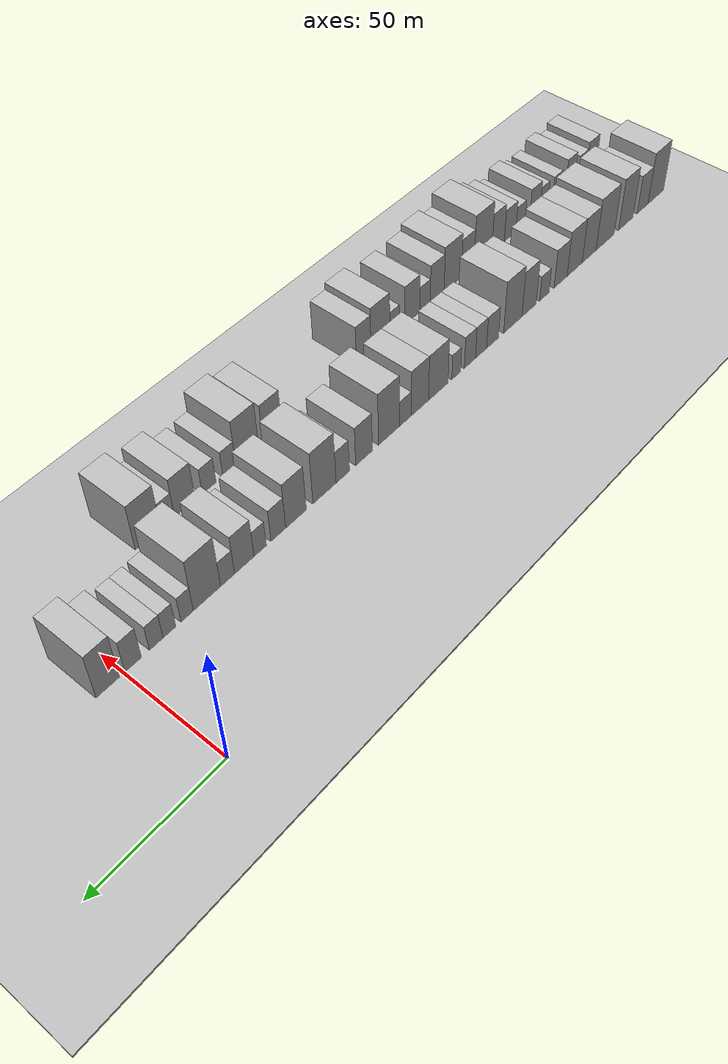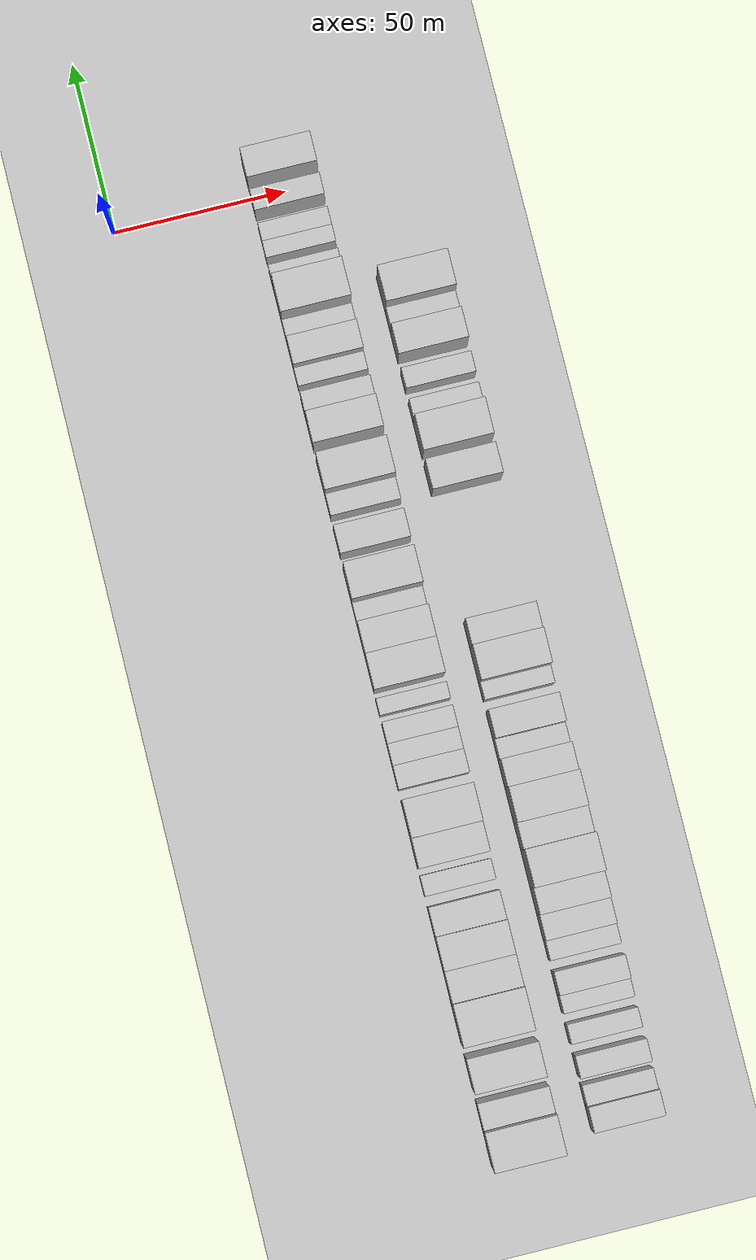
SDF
<sdf version="1.6">
 <world name="default">
  <include><name>ground_plane_1</name><uri>model://HANNAS_ground_plane</uri></include>
  <include>
   <name>ground_plane_2</name>
   <uri>model://HANNAS_ground_plane</uri>
   <pose>100 0 0  0 0 0</pose>
  </include>
  <model name="building_1">
   <static>1</static>
   <pose>50.0000 -272.4580 0 0.000000 0.000000 0.000000</pose>
   <link name="link">
    <pose>0 0 12.00 0 0 0</pose>
    <collision name="collision"><geometry><box><size>20.0000 11.0839 24.0000</size></box></geometry></collision>
    <visual name="visual">
     <cast_shadows>0</cast_shadows>
     <geometry><box><size>20.0000 11.0839 24.0000</size></box></geometry>
     <material>
      <script>
       <uri>model://HANNAS_wall/materials/scripts</uri>
       <uri>model://HANNAS_wall/materials/textures</uri>
       <name>vrc/HANNAS_wall</name>
      </script>
     </material>
    </visual>
   </link>
  </model>
  <model name="building_2">
   <static>1</static>
   <pose>50.0000 -263.2071 0 0.000000 0.000000 0.000000</pose>
   <link name="link">
    <pose>0 0 9.00 0 0 0</pose>
    <collision name="collision"><geometry><box><size>20.0000 7.4179 18.0000</size></box></geometry></collision>
    <visual name="visual">
     <cast_shadows>0</cast_shadows>
     <geometry><box><size>20.0000 7.4179 18.0000</size></box></geometry>
     <material>
      <script>
       <uri>model://HANNAS_wall/materials/scripts</uri>
       <uri>model://HANNAS_wall/materials/textures</uri>
       <name>vrc/HANNAS_wall</name>
      </script>
     </material>
    </visual>
   </link>
  </model>
  <model name="building_3">
   <static>1</static>
   <pose>50.0000 -251.6406 0 0.000000 0.000000 0.000000</pose>
   <link name="link">
    <pose>0 0 12.00 0 0 0</pose>
    <collision name="collision"><geometry><box><size>20.0000 9.7152 24.0000</size></box></geometry></collision>
    <visual name="visual">
     <cast_shadows>0</cast_shadows>
     <geometry><box><size>20.0000 9.7152 24.0000</size></box></geometry>
     <material>
      <script>
       <uri>model://HANNAS_wall/materials/scripts</uri>
       <uri>model://HANNAS_wall/materials/textures</uri>
       <name>vrc/HANNAS_wall</name>
      </script>
     </material>
    </visual>
   </link>
  </model>
  <model name="building_4">
   <static>1</static>
   <pose>50.0000 -237.8133 0 0.000000 0.000000 0.000000</pose>
   <link name="link">
    <pose>0 0 12.00 0 0 0</pose>
    <collision name="collision"><geometry><box><size>20.0000 11.9394 24.0000</size></box></geometry></collision>
    <visual name="visual">
     <cast_shadows>0</cast_shadows>
     <geometry><box><size>20.0000 11.9394 24.0000</size></box></geometry>
     <material>
      <script>
       <uri>model://HANNAS_wall/materials/scripts</uri>
       <uri>model://HANNAS_wall/materials/textures</uri>
       <name>vrc/HANNAS_wall</name>
      </script>
     </material>
    </visual>
   </link>
  </model>
  <model name="building_5">
   <static>1</static>
   <pose>50.0000 -227.3742 0 0.000000 0.000000 0.000000</pose>
   <link name="link">
    <pose>0 0 10.50 0 0 0</pose>
    <collision name="collision"><geometry><box><size>20.0000 8.9388 21.0000</size></box></geometry></collision>
    <visual name="visual">
     <cast_shadows>0</cast_shadows>
     <geometry><box><size>20.0000 8.9388 21.0000</size></box></geometry>
     <material>
      <script>
       <uri>model://HANNAS_wall/materials/scripts</uri>
       <uri>model://HANNAS_wall/materials/textures</uri>
       <name>vrc/HANNAS_wall</name>
      </script>
     </material>
    </visual>
   </link>
  </model>
  <model name="building_6">
   <static>1</static>
   <pose>50.0000 -218.1332 0 0.000000 0.000000 0.000000</pose>
   <link name="link">
    <pose>0 0 10.50 0 0 0</pose>
    <collision name="collision"><geometry><box><size>20.0000 9.5433 21.0000</size></box></geometry></collision>
    <visual name="visual">
     <cast_shadows>0</cast_shadows>
     <geometry><box><size>20.0000 9.5433 21.0000</size></box></geometry>
     <material>
      <script>
       <uri>model://HANNAS_wall/materials/scripts</uri>
       <uri>model://HANNAS_wall/materials/textures</uri>
       <name>vrc/HANNAS_wall</name>
      </script>
     </material>
    </visual>
   </link>
  </model>
  <model name="building_7">
   <static>1</static>
   <pose>50.0000 -209.2795 0 0.000000 0.000000 0.000000</pose>
   <link name="link">
    <pose>0 0 9.00 0 0 0</pose>
    <collision name="collision"><geometry><box><size>20.0000 8.1641 18.0000</size></box></geometry></collision>
    <visual name="visual">
     <cast_shadows>0</cast_shadows>
     <geometry><box><size>20.0000 8.1641 18.0000</size></box></geometry>
     <material>
      <script>
       <uri>model://HANNAS_wall/materials/scripts</uri>
       <uri>model://HANNAS_wall/materials/textures</uri>
       <name>vrc/HANNAS_wall</name>
      </script>
     </material>
    </visual>
   </link>
  </model>
  <model name="building_8">
   <static>1</static>
   <pose>50.0000 -199.2894 0 0.000000 0.000000 0.000000</pose>
   <link name="link">
    <pose>0 0 6.00 0 0 0</pose>
    <collision name="collision"><geometry><box><size>20.0000 5.8160 12.0000</size></box></geometry></collision>
    <visual name="visual">
     <cast_shadows>0</cast_shadows>
     <geometry><box><size>20.0000 5.8160 12.0000</size></box></geometry>
     <material>
      <script>
       <uri>model://HANNAS_wall/materials/scripts</uri>
       <uri>model://HANNAS_wall/materials/textures</uri>
       <name>vrc/HANNAS_wall</name>
      </script>
     </material>
    </visual>
   </link>
  </model>
  <model name="building_9">
   <static>1</static>
   <pose>50.0000 -190.1511 0 0.000000 0.000000 0.000000</pose>
   <link name="link">
    <pose>0 0 10.50 0 0 0</pose>
    <collision name="collision"><geometry><box><size>20.0000 8.4607 21.0000</size></box></geometry></collision>
    <visual name="visual">
     <cast_shadows>0</cast_shadows>
     <geometry><box><size>20.0000 8.4607 21.0000</size></box></geometry>
     <material>
      <script>
       <uri>model://HANNAS_wall/materials/scripts</uri>
       <uri>model://HANNAS_wall/materials/textures</uri>
       <name>vrc/HANNAS_wall</name>
      </script>
     </material>
    </visual>
   </link>
  </model>
  <model name="building_10">
   <static>1</static>
   <pose>50.0000 -180.5715 0 0.000000 0.000000 0.000000</pose>
   <link name="link">
    <pose>0 0 12.00 0 0 0</pose>
    <collision name="collision"><geometry><box><size>20.0000 10.6986 24.0000</size></box></geometry></collision>
    <visual name="visual">
     <cast_shadows>0</cast_shadows>
     <geometry><box><size>20.0000 10.6986 24.0000</size></box></geometry>
     <material>
      <script>
       <uri>model://HANNAS_wall/materials/scripts</uri>
       <uri>model://HANNAS_wall/materials/textures</uri>
       <name>vrc/HANNAS_wall</name>
      </script>
     </material>
    </visual>
   </link>
  </model>
  <model name="building_11">
   <static>1</static>
   <pose>50.0000 -168.8535 0 0.000000 0.000000 0.000000</pose>
   <link name="link">
    <pose>0 0 7.50 0 0 0</pose>
    <collision name="collision"><geometry><box><size>20.0000 6.7373 15.0000</size></box></geometry></collision>
    <visual name="visual">
     <cast_shadows>0</cast_shadows>
     <geometry><box><size>20.0000 6.7373 15.0000</size></box></geometry>
     <material>
      <script>
       <uri>model://HANNAS_wall/materials/scripts</uri>
       <uri>model://HANNAS_wall/materials/textures</uri>
       <name>vrc/HANNAS_wall</name>
      </script>
     </material>
    </visual>
   </link>
  </model>
  <model name="building_12">
   <static>1</static>
   <pose>50.0000 -162.3870 0 0.000000 0.000000 0.000000</pose>
   <link name="link">
    <pose>0 0 7.50 0 0 0</pose>
    <collision name="collision"><geometry><box><size>20.0000 6.1957 15.0000</size></box></geometry></collision>
    <visual name="visual">
     <cast_shadows>0</cast_shadows>
     <geometry><box><size>20.0000 6.1957 15.0000</size></box></geometry>
     <material>
      <script>
       <uri>model://HANNAS_wall/materials/scripts</uri>
       <uri>model://HANNAS_wall/materials/textures</uri>
       <name>vrc/HANNAS_wall</name>
      </script>
     </material>
    </visual>
   </link>
  </model>
  <model name="building_13">
   <static>1</static>
   <pose>50.0000 -156.2101 0 0.000000 0.000000 0.000000</pose>
   <link name="link">
    <pose>0 0 7.50 0 0 0</pose>
    <collision name="collision"><geometry><box><size>20.0000 6.1582 15.0000</size></box></geometry></collision>
    <visual name="visual">
     <cast_shadows>0</cast_shadows>
     <geometry><box><size>20.0000 6.1582 15.0000</size></box></geometry>
     <material>
      <script>
       <uri>model://HANNAS_wall/materials/scripts</uri>
       <uri>model://HANNAS_wall/materials/textures</uri>
       <name>vrc/HANNAS_wall</name>
      </script>
     </material>
    </visual>
   </link>
  </model>
  <model name="building_14">
   <static>1</static>
   <pose>50.0000 -148.7292 0 0.000000 0.000000 0.000000</pose>
   <link name="link">
    <pose>0 0 6.00 0 0 0</pose>
    <collision name="collision"><geometry><box><size>20.0000 4.8036 12.0000</size></box></geometry></collision>
    <visual name="visual">
     <cast_shadows>0</cast_shadows>
     <geometry><box><size>20.0000 4.8036 12.0000</size></box></geometry>
     <material>
      <script>
       <uri>model://HANNAS_wall/materials/scripts</uri>
       <uri>model://HANNAS_wall/materials/textures</uri>
       <name>vrc/HANNAS_wall</name>
      </script>
     </material>
    </visual>
   </link>
  </model>
  <model name="building_15">
   <static>1</static>
   <pose>50.0000 -139.2050 0 0.000000 0.000000 0.000000</pose>
   <link name="link">
    <pose>0 0 10.50 0 0 0</pose>
    <collision name="collision"><geometry><box><size>20.0000 10.2449 21.0000</size></box></geometry></collision>
    <visual name="visual">
     <cast_shadows>0</cast_shadows>
     <geometry><box><size>20.0000 10.2449 21.0000</size></box></geometry>
     <material>
      <script>
       <uri>model://HANNAS_wall/materials/scripts</uri>
       <uri>model://HANNAS_wall/materials/textures</uri>
       <name>vrc/HANNAS_wall</name>
      </script>
     </material>
    </visual>
   </link>
  </model>
  <model name="building_16">
   <static>1</static>
   <pose>50.0000 -129.5559 0 0.000000 0.000000 0.000000</pose>
   <link name="link">
    <pose>0 0 10.50 0 0 0</pose>
    <collision name="collision"><geometry><box><size>20.0000 9.0533 21.0000</size></box></geometry></collision>
    <visual name="visual">
     <cast_shadows>0</cast_shadows>
     <geometry><box><size>20.0000 9.0533 21.0000</size></box></geometry>
     <material>
      <script>
       <uri>model://HANNAS_wall/materials/scripts</uri>
       <uri>model://HANNAS_wall/materials/textures</uri>
       <name>vrc/HANNAS_wall</name>
      </script>
     </material>
    </visual>
   </link>
  </model>
  <model name="building_17">
   <static>1</static>
   <pose>50.0000 -122.0449 0 0.000000 0.000000 0.000000</pose>
   <link name="link">
    <pose>0 0 6.00 0 0 0</pose>
    <collision name="collision"><geometry><box><size>20.0000 5.9686 12.0000</size></box></geometry></collision>
    <visual name="visual">
     <cast_shadows>0</cast_shadows>
     <geometry><box><size>20.0000 5.9686 12.0000</size></box></geometry>
     <material>
      <script>
       <uri>model://HANNAS_wall/materials/scripts</uri>
       <uri>model://HANNAS_wall/materials/textures</uri>
       <name>vrc/HANNAS_wall</name>
      </script>
     </material>
    </visual>
   </link>
  </model>
  <model name="building_18">
   <static>1</static>
   <pose>50.0000 -113.8500 0 0.000000 0.000000 0.000000</pose>
   <link name="link">
    <pose>0 0 12.00 0 0 0</pose>
    <collision name="collision"><geometry><box><size>20.0000 10.4212 24.0000</size></box></geometry></collision>
    <visual name="visual">
     <cast_shadows>0</cast_shadows>
     <geometry><box><size>20.0000 10.4212 24.0000</size></box></geometry>
     <material>
      <script>
       <uri>model://HANNAS_wall/materials/scripts</uri>
       <uri>model://HANNAS_wall/materials/textures</uri>
       <name>vrc/HANNAS_wall</name>
      </script>
     </material>
    </visual>
   </link>
  </model>
  <model name="building_19">
   <static>1</static>
   <pose>50.0000 -101.5879 0 0.000000 0.000000 0.000000</pose>
   <link name="link">
    <pose>0 0 9.00 0 0 0</pose>
    <collision name="collision"><geometry><box><size>20.0000 8.1029 18.0000</size></box></geometry></collision>
    <visual name="visual">
     <cast_shadows>0</cast_shadows>
     <geometry><box><size>20.0000 8.1029 18.0000</size></box></geometry>
     <material>
      <script>
       <uri>model://HANNAS_wall/materials/scripts</uri>
       <uri>model://HANNAS_wall/materials/textures</uri>
       <name>vrc/HANNAS_wall</name>
      </script>
     </material>
    </visual>
   </link>
  </model>
  <model name="building_20">
   <static>1</static>
   <pose>50.0000 -91.3871 0 0.000000 0.000000 0.000000</pose>
   <link name="link">
    <pose>0 0 7.50 0 0 0</pose>
    <collision name="collision"><geometry><box><size>20.0000 6.2987 15.0000</size></box></geometry></collision>
    <visual name="visual">
     <cast_shadows>0</cast_shadows>
     <geometry><box><size>20.0000 6.2987 15.0000</size></box></geometry>
     <material>
      <script>
       <uri>model://HANNAS_wall/materials/scripts</uri>
       <uri>model://HANNAS_wall/materials/textures</uri>
       <name>vrc/HANNAS_wall</name>
      </script>
     </material>
    </visual>
   </link>
  </model>
  <model name="building_21">
   <static>1</static>
   <pose>50.0000 -82.8770 0 0.000000 0.000000 0.000000</pose>
   <link name="link">
    <pose>0 0 12.00 0 0 0</pose>
    <collision name="collision"><geometry><box><size>20.0000 10.7214 24.0000</size></box></geometry></collision>
    <visual name="visual">
     <cast_shadows>0</cast_shadows>
     <geometry><box><size>20.0000 10.7214 24.0000</size></box></geometry>
     <material>
      <script>
       <uri>model://HANNAS_wall/materials/scripts</uri>
       <uri>model://HANNAS_wall/materials/textures</uri>
       <name>vrc/HANNAS_wall</name>
      </script>
     </material>
    </visual>
   </link>
  </model>
  <model name="building_22">
   <static>1</static>
   <pose>50.0000 -69.9177 0 0.000000 0.000000 0.000000</pose>
   <link name="link">
    <pose>0 0 10.50 0 0 0</pose>
    <collision name="collision"><geometry><box><size>20.0000 9.1972 21.0000</size></box></geometry></collision>
    <visual name="visual">
     <cast_shadows>0</cast_shadows>
     <geometry><box><size>20.0000 9.1972 21.0000</size></box></geometry>
     <material>
      <script>
       <uri>model://HANNAS_wall/materials/scripts</uri>
       <uri>model://HANNAS_wall/materials/textures</uri>
       <name>vrc/HANNAS_wall</name>
      </script>
     </material>
    </visual>
   </link>
  </model>
  <model name="building_23">
   <static>1</static>
   <pose>50.0000 -62.0917 0 0.000000 0.000000 0.000000</pose>
   <link name="link">
    <pose>0 0 7.50 0 0 0</pose>
    <collision name="collision"><geometry><box><size>20.0000 6.4550 15.0000</size></box></geometry></collision>
    <visual name="visual">
     <cast_shadows>0</cast_shadows>
     <geometry><box><size>20.0000 6.4550 15.0000</size></box></geometry>
     <material>
      <script>
       <uri>model://HANNAS_wall/materials/scripts</uri>
       <uri>model://HANNAS_wall/materials/textures</uri>
       <name>vrc/HANNAS_wall</name>
      </script>
     </material>
    </visual>
   </link>
  </model>
  <model name="building_24">
   <static>1</static>
   <pose>50.0000 -54.2108 0 0.000000 0.000000 0.000000</pose>
   <link name="link">
    <pose>0 0 6.00 0 0 0</pose>
    <collision name="collision"><geometry><box><size>20.0000 5.3067 12.0000</size></box></geometry></collision>
    <visual name="visual">
     <cast_shadows>0</cast_shadows>
     <geometry><box><size>20.0000 5.3067 12.0000</size></box></geometry>
     <material>
      <script>
       <uri>model://HANNAS_wall/materials/scripts</uri>
       <uri>model://HANNAS_wall/materials/textures</uri>
       <name>vrc/HANNAS_wall</name>
      </script>
     </material>
    </visual>
   </link>
  </model>
  <model name="building_25">
   <static>1</static>
   <pose>50.0000 -47.4752 0 0.000000 0.000000 0.000000</pose>
   <link name="link">
    <pose>0 0 9.00 0 0 0</pose>
    <collision name="collision"><geometry><box><size>20.0000 8.1644 18.0000</size></box></geometry></collision>
    <visual name="visual">
     <cast_shadows>0</cast_shadows>
     <geometry><box><size>20.0000 8.1644 18.0000</size></box></geometry>
     <material>
      <script>
       <uri>model://HANNAS_wall/materials/scripts</uri>
       <uri>model://HANNAS_wall/materials/textures</uri>
       <name>vrc/HANNAS_wall</name>
      </script>
     </material>
    </visual>
   </link>
  </model>
  <model name="building_26">
   <static>1</static>
   <pose>50.0000 -40.4975 0 0.000000 0.000000 0.000000</pose>
   <link name="link">
    <pose>0 0 6.00 0 0 0</pose>
    <collision name="collision"><geometry><box><size>20.0000 5.7911 12.0000</size></box></geometry></collision>
    <visual name="visual">
     <cast_shadows>0</cast_shadows>
     <geometry><box><size>20.0000 5.7911 12.0000</size></box></geometry>
     <material>
      <script>
       <uri>model://HANNAS_wall/materials/scripts</uri>
       <uri>model://HANNAS_wall/materials/textures</uri>
       <name>vrc/HANNAS_wall</name>
      </script>
     </material>
    </visual>
   </link>
  </model>
  <model name="building_27">
   <static>1</static>
   <pose>50.0000 -32.0658 0 0.000000 0.000000 0.000000</pose>
   <link name="link">
    <pose>0 0 12.00 0 0 0</pose>
    <collision name="collision"><geometry><box><size>20.0000 11.0724 24.0000</size></box></geometry></collision>
    <visual name="visual">
     <cast_shadows>0</cast_shadows>
     <geometry><box><size>20.0000 11.0724 24.0000</size></box></geometry>
     <material>
      <script>
       <uri>model://HANNAS_wall/materials/scripts</uri>
       <uri>model://HANNAS_wall/materials/textures</uri>
       <name>vrc/HANNAS_wall</name>
      </script>
     </material>
    </visual>
   </link>
  </model>
  <model name="building_28">
   <static>1</static>
   <pose>50.0000 -24.0606 0 0.000000 0.000000 0.000000</pose>
   <link name="link">
    <pose>0 0 6.00 0 0 0</pose>
    <collision name="collision"><geometry><box><size>20.0000 4.9379 12.0000</size></box></geometry></collision>
    <visual name="visual">
     <cast_shadows>0</cast_shadows>
     <geometry><box><size>20.0000 4.9379 12.0000</size></box></geometry>
     <material>
      <script>
       <uri>model://HANNAS_wall/materials/scripts</uri>
       <uri>model://HANNAS_wall/materials/textures</uri>
       <name>vrc/HANNAS_wall</name>
      </script>
     </material>
    </visual>
   </link>
  </model>
  <model name="building_29">
   <static>1</static>
   <pose>50.0000 -17.1362 0 0.000000 0.000000 0.000000</pose>
   <link name="link">
    <pose>0 0 6.00 0 0 0</pose>
    <collision name="collision"><geometry><box><size>20.0000 4.9109 12.0000</size></box></geometry></collision>
    <visual name="visual">
     <cast_shadows>0</cast_shadows>
     <geometry><box><size>20.0000 4.9109 12.0000</size></box></geometry>
     <material>
      <script>
       <uri>model://HANNAS_wall/materials/scripts</uri>
       <uri>model://HANNAS_wall/materials/textures</uri>
       <name>vrc/HANNAS_wall</name>
      </script>
     </material>
    </visual>
   </link>
  </model>
  <model name="building_30">
   <static>1</static>
   <pose>50.0000 -12.0396 0 0.000000 0.000000 0.000000</pose>
   <link name="link">
    <pose>0 0 6.00 0 0 0</pose>
    <collision name="collision"><geometry><box><size>20.0000 5.2822 12.0000</size></box></geometry></collision>
    <visual name="visual">
     <cast_shadows>0</cast_shadows>
     <geometry><box><size>20.0000 5.2822 12.0000</size></box></geometry>
     <material>
      <script>
       <uri>model://HANNAS_wall/materials/scripts</uri>
       <uri>model://HANNAS_wall/materials/textures</uri>
       <name>vrc/HANNAS_wall</name>
      </script>
     </material>
    </visual>
   </link>
  </model>
  <model name="building_31">
   <static>1</static>
   <pose>50.0000 -3.2938 0 0.000000 0.000000 0.000000</pose>
   <link name="link">
    <pose>0 0 7.50 0 0 0</pose>
    <collision name="collision"><geometry><box><size>20.0000 6.2094 15.0000</size></box></geometry></collision>
    <visual name="visual">
     <cast_shadows>0</cast_shadows>
     <geometry><box><size>20.0000 6.2094 15.0000</size></box></geometry>
     <material>
      <script>
       <uri>model://HANNAS_wall/materials/scripts</uri>
       <uri>model://HANNAS_wall/materials/textures</uri>
       <name>vrc/HANNAS_wall</name>
      </script>
     </material>
    </visual>
   </link>
  </model>
  <model name="building_32">
   <static>1</static>
   <pose>50.0000 6.1008 0 0.000000 0.000000 0.000000</pose>
   <link name="link">
    <pose>0 0 10.50 0 0 0</pose>
    <collision name="collision"><geometry><box><size>20.0000 8.5798 21.0000</size></box></geometry></collision>
    <visual name="visual">
     <cast_shadows>0</cast_shadows>
     <geometry><box><size>20.0000 8.5798 21.0000</size></box></geometry>
     <material>
      <script>
       <uri>model://HANNAS_wall/materials/scripts</uri>
       <uri>model://HANNAS_wall/materials/textures</uri>
       <name>vrc/HANNAS_wall</name>
      </script>
     </material>
    </visual>
   </link>
  </model>
  <model name="building_63">
   <static>1</static>
   <pose>79.0000 -271.4325 0 0.000000 0.000000 0.000000</pose>
   <link name="link">
    <pose>0 0 7.50 0 0 0</pose>
    <collision name="collision"><geometry><box><size>20.0000 7.1350 15.0000</size></box></geometry></collision>
    <visual name="visual">
     <cast_shadows>0</cast_shadows>
     <geometry><box><size>20.0000 7.1350 15.0000</size></box></geometry>
     <material>
      <script>
       <uri>model://HANNAS_wall/materials/scripts</uri>
       <uri>model://HANNAS_wall/materials/textures</uri>
       <name>vrc/HANNAS_wall</name>
      </script>
     </material>
    </visual>
   </link>
  </model>
  <model name="building_64">
   <static>1</static>
   <pose>79.0000 -264.9563 0 0.000000 0.000000 0.000000</pose>
   <link name="link">
    <pose>0 0 6.00 0 0 0</pose>
    <collision name="collision"><geometry><box><size>20.0000 5.8173 12.0000</size></box></geometry></collision>
    <visual name="visual">
     <cast_shadows>0</cast_shadows>
     <geometry><box><size>20.0000 5.8173 12.0000</size></box></geometry>
     <material>
      <script>
       <uri>model://HANNAS_wall/materials/scripts</uri>
       <uri>model://HANNAS_wall/materials/textures</uri>
       <name>vrc/HANNAS_wall</name>
      </script>
     </material>
    </visual>
   </link>
  </model>
  <model name="building_65">
   <static>1</static>
   <pose>79.0000 -256.8660 0 0.000000 0.000000 0.000000</pose>
   <link name="link">
    <pose>0 0 7.50 0 0 0</pose>
    <collision name="collision"><geometry><box><size>20.0000 6.3634 15.0000</size></box></geometry></collision>
    <visual name="visual">
     <cast_shadows>0</cast_shadows>
     <geometry><box><size>20.0000 6.3634 15.0000</size></box></geometry>
     <material>
      <script>
       <uri>model://HANNAS_wall/materials/scripts</uri>
       <uri>model://HANNAS_wall/materials/textures</uri>
       <name>vrc/HANNAS_wall</name>
      </script>
     </material>
    </visual>
   </link>
  </model>
  <model name="building_66">
   <static>1</static>
   <pose>79.0000 -247.9152 0 0.000000 0.000000 0.000000</pose>
   <link name="link">
    <pose>0 0 6.00 0 0 0</pose>
    <collision name="collision"><geometry><box><size>20.0000 5.5382 12.0000</size></box></geometry></collision>
    <visual name="visual">
     <cast_shadows>0</cast_shadows>
     <geometry><box><size>20.0000 5.5382 12.0000</size></box></geometry>
     <material>
      <script>
       <uri>model://HANNAS_wall/materials/scripts</uri>
       <uri>model://HANNAS_wall/materials/textures</uri>
       <name>vrc/HANNAS_wall</name>
      </script>
     </material>
    </visual>
   </link>
  </model>
  <model name="building_67">
   <static>1</static>
   <pose>79.0000 -239.5707 0 0.000000 0.000000 0.000000</pose>
   <link name="link">
    <pose>0 0 6.00 0 0 0</pose>
    <collision name="collision"><geometry><box><size>20.0000 5.1507 12.0000</size></box></geometry></collision>
    <visual name="visual">
     <cast_shadows>0</cast_shadows>
     <geometry><box><size>20.0000 5.1507 12.0000</size></box></geometry>
     <material>
      <script>
       <uri>model://HANNAS_wall/materials/scripts</uri>
       <uri>model://HANNAS_wall/materials/textures</uri>
       <name>vrc/HANNAS_wall</name>
      </script>
     </material>
    </visual>
   </link>
  </model>
  <model name="building_68">
   <static>1</static>
   <pose>79.0000 -233.6672 0 0.000000 0.000000 0.000000</pose>
   <link name="link">
    <pose>0 0 7.50 0 0 0</pose>
    <collision name="collision"><geometry><box><size>20.0000 6.6565 15.0000</size></box></geometry></collision>
    <visual name="visual">
     <cast_shadows>0</cast_shadows>
     <geometry><box><size>20.0000 6.6565 15.0000</size></box></geometry>
     <material>
      <script>
       <uri>model://HANNAS_wall/materials/scripts</uri>
       <uri>model://HANNAS_wall/materials/textures</uri>
       <name>vrc/HANNAS_wall</name>
      </script>
     </material>
    </visual>
   </link>
  </model>
  <model name="building_69">
   <static>1</static>
   <pose>79.0000 -224.5181 0 0.000000 0.000000 0.000000</pose>
   <link name="link">
    <pose>0 0 6.00 0 0 0</pose>
    <collision name="collision"><geometry><box><size>20.0000 5.6416 12.0000</size></box></geometry></collision>
    <visual name="visual">
     <cast_shadows>0</cast_shadows>
     <geometry><box><size>20.0000 5.6416 12.0000</size></box></geometry>
     <material>
      <script>
       <uri>model://HANNAS_wall/materials/scripts</uri>
       <uri>model://HANNAS_wall/materials/textures</uri>
       <name>vrc/HANNAS_wall</name>
      </script>
     </material>
    </visual>
   </link>
  </model>
  <model name="building_70">
   <static>1</static>
   <pose>79.0000 -218.0711 0 0.000000 0.000000 0.000000</pose>
   <link name="link">
    <pose>0 0 7.50 0 0 0</pose>
    <collision name="collision"><geometry><box><size>20.0000 7.2524 15.0000</size></box></geometry></collision>
    <visual name="visual">
     <cast_shadows>0</cast_shadows>
     <geometry><box><size>20.0000 7.2524 15.0000</size></box></geometry>
     <material>
      <script>
       <uri>model://HANNAS_wall/materials/scripts</uri>
       <uri>model://HANNAS_wall/materials/textures</uri>
       <name>vrc/HANNAS_wall</name>
      </script>
     </material>
    </visual>
   </link>
  </model>
  <model name="building_71">
   <static>1</static>
   <pose>79.0000 -210.6546 0 0.000000 0.000000 0.000000</pose>
   <link name="link">
    <pose>0 0 9.00 0 0 0</pose>
    <collision name="collision"><geometry><box><size>20.0000 7.5807 18.0000</size></box></geometry></collision>
    <visual name="visual">
     <cast_shadows>0</cast_shadows>
     <geometry><box><size>20.0000 7.5807 18.0000</size></box></geometry>
     <material>
      <script>
       <uri>model://HANNAS_wall/materials/scripts</uri>
       <uri>model://HANNAS_wall/materials/textures</uri>
       <name>vrc/HANNAS_wall</name>
      </script>
     </material>
    </visual>
   </link>
  </model>
  <model name="building_72">
   <static>1</static>
   <pose>79.0000 -201.5052 0 0.000000 0.000000 0.000000</pose>
   <link name="link">
    <pose>0 0 12.00 0 0 0</pose>
    <collision name="collision"><geometry><box><size>20.0000 10.7180 24.0000</size></box></geometry></collision>
    <visual name="visual">
     <cast_shadows>0</cast_shadows>
     <geometry><box><size>20.0000 10.7180 24.0000</size></box></geometry>
     <material>
      <script>
       <uri>model://HANNAS_wall/materials/scripts</uri>
       <uri>model://HANNAS_wall/materials/textures</uri>
       <name>vrc/HANNAS_wall</name>
      </script>
     </material>
    </visual>
   </link>
  </model>
  <model name="building_73">
   <static>1</static>
   <pose>79.0000 -192.4243 0 0.000000 0.000000 0.000000</pose>
   <link name="link">
    <pose>0 0 9.00 0 0 0</pose>
    <collision name="collision"><geometry><box><size>20.0000 7.4438 18.0000</size></box></geometry></collision>
    <visual name="visual">
     <cast_shadows>0</cast_shadows>
     <geometry><box><size>20.0000 7.4438 18.0000</size></box></geometry>
     <material>
      <script>
       <uri>model://HANNAS_wall/materials/scripts</uri>
       <uri>model://HANNAS_wall/materials/textures</uri>
       <name>vrc/HANNAS_wall</name>
      </script>
     </material>
    </visual>
   </link>
  </model>
  <model name="building_74">
   <static>1</static>
   <pose>79.0000 -183.7045 0 0.000000 0.000000 0.000000</pose>
   <link name="link">
    <pose>0 0 10.50 0 0 0</pose>
    <collision name="collision"><geometry><box><size>20.0000 9.9958 21.0000</size></box></geometry></collision>
    <visual name="visual">
     <cast_shadows>0</cast_shadows>
     <geometry><box><size>20.0000 9.9958 21.0000</size></box></geometry>
     <material>
      <script>
       <uri>model://HANNAS_wall/materials/scripts</uri>
       <uri>model://HANNAS_wall/materials/textures</uri>
       <name>vrc/HANNAS_wall</name>
      </script>
     </material>
    </visual>
   </link>
  </model>
  <model name="building_75">
   <static>1</static>
   <pose>79.0000 -174.7690 0 0.000000 0.000000 0.000000</pose>
   <link name="link">
    <pose>0 0 9.00 0 0 0</pose>
    <collision name="collision"><geometry><box><size>20.0000 7.8751 18.0000</size></box></geometry></collision>
    <visual name="visual">
     <cast_shadows>0</cast_shadows>
     <geometry><box><size>20.0000 7.8751 18.0000</size></box></geometry>
     <material>
      <script>
       <uri>model://HANNAS_wall/materials/scripts</uri>
       <uri>model://HANNAS_wall/materials/textures</uri>
       <name>vrc/HANNAS_wall</name>
      </script>
     </material>
    </visual>
   </link>
  </model>
  <model name="building_76">
   <static>1</static>
   <pose>79.0000 -167.9381 0 0.000000 0.000000 0.000000</pose>
   <link name="link">
    <pose>0 0 6.00 0 0 0</pose>
    <collision name="collision"><geometry><box><size>20.0000 5.7867 12.0000</size></box></geometry></collision>
    <visual name="visual">
     <cast_shadows>0</cast_shadows>
     <geometry><box><size>20.0000 5.7867 12.0000</size></box></geometry>
     <material>
      <script>
       <uri>model://HANNAS_wall/materials/scripts</uri>
       <uri>model://HANNAS_wall/materials/textures</uri>
       <name>vrc/HANNAS_wall</name>
      </script>
     </material>
    </visual>
   </link>
  </model>
  <model name="building_77">
   <static>1</static>
   <pose>79.0000 -160.9713 0 0.000000 0.000000 0.000000</pose>
   <link name="link">
    <pose>0 0 9.00 0 0 0</pose>
    <collision name="collision"><geometry><box><size>20.0000 8.1470 18.0000</size></box></geometry></collision>
    <visual name="visual">
     <cast_shadows>0</cast_shadows>
     <geometry><box><size>20.0000 8.1470 18.0000</size></box></geometry>
     <material>
      <script>
       <uri>model://HANNAS_wall/materials/scripts</uri>
       <uri>model://HANNAS_wall/materials/textures</uri>
       <name>vrc/HANNAS_wall</name>
      </script>
     </material>
    </visual>
   </link>
  </model>
  <model name="building_78">
   <static>1</static>
   <pose>79.0000 -151.3480 0 0.000000 0.000000 0.000000</pose>
   <link name="link">
    <pose>0 0 6.00 0 0 0</pose>
    <collision name="collision"><geometry><box><size>20.0000 5.0995 12.0000</size></box></geometry></collision>
    <visual name="visual">
     <cast_shadows>0</cast_shadows>
     <geometry><box><size>20.0000 5.0995 12.0000</size></box></geometry>
     <material>
      <script>
       <uri>model://HANNAS_wall/materials/scripts</uri>
       <uri>model://HANNAS_wall/materials/textures</uri>
       <name>vrc/HANNAS_wall</name>
      </script>
     </material>
    </visual>
   </link>
  </model>
  <model name="building_79">
   <static>1</static>
   <pose>79.0000 -143.7996 0 0.000000 0.000000 0.000000</pose>
   <link name="link">
    <pose>0 0 10.50 0 0 0</pose>
    <collision name="collision"><geometry><box><size>20.0000 9.9974 21.0000</size></box></geometry></collision>
    <visual name="visual">
     <cast_shadows>0</cast_shadows>
     <geometry><box><size>20.0000 9.9974 21.0000</size></box></geometry>
     <material>
      <script>
       <uri>model://HANNAS_wall/materials/scripts</uri>
       <uri>model://HANNAS_wall/materials/textures</uri>
       <name>vrc/HANNAS_wall</name>
      </script>
     </material>
    </visual>
   </link>
  </model>
  <model name="building_80">
   <static>1</static>
   <pose>79.0000 -135.0164 0 0.000000 0.000000 0.000000</pose>
   <link name="link">
    <pose>0 0 9.00 0 0 0</pose>
    <collision name="collision"><geometry><box><size>20.0000 7.5692 18.0000</size></box></geometry></collision>
    <visual name="visual">
     <cast_shadows>0</cast_shadows>
     <geometry><box><size>20.0000 7.5692 18.0000</size></box></geometry>
     <material>
      <script>
       <uri>model://HANNAS_wall/materials/scripts</uri>
       <uri>model://HANNAS_wall/materials/textures</uri>
       <name>vrc/HANNAS_wall</name>
      </script>
     </material>
    </visual>
   </link>
  </model>
  <model name="building_81">
   <static>1</static>
   <pose>79.0000 -90.1417 0 0.000000 0.000000 0.000000</pose>
   <link name="link">
    <pose>0 0 9.00 0 0 0</pose>
    <collision name="collision"><geometry><box><size>20.0000 8.7267 18.0000</size></box></geometry></collision>
    <visual name="visual">
     <cast_shadows>0</cast_shadows>
     <geometry><box><size>20.0000 8.7267 18.0000</size></box></geometry>
     <material>
      <script>
       <uri>model://HANNAS_wall/materials/scripts</uri>
       <uri>model://HANNAS_wall/materials/textures</uri>
       <name>vrc/HANNAS_wall</name>
      </script>
     </material>
    </visual>
   </link>
  </model>
  <model name="building_82">
   <static>1</static>
   <pose>79.0000 -78.5949 0 0.000000 0.000000 0.000000</pose>
   <link name="link">
    <pose>0 0 10.50 0 0 0</pose>
    <collision name="collision"><geometry><box><size>20.0000 10.3667 21.0000</size></box></geometry></collision>
    <visual name="visual">
     <cast_shadows>0</cast_shadows>
     <geometry><box><size>20.0000 10.3667 21.0000</size></box></geometry>
     <material>
      <script>
       <uri>model://HANNAS_wall/materials/scripts</uri>
       <uri>model://HANNAS_wall/materials/textures</uri>
       <name>vrc/HANNAS_wall</name>
      </script>
     </material>
    </visual>
   </link>
  </model>
  <model name="building_83">
   <static>1</static>
   <pose>79.0000 -70.5244 0 0.000000 0.000000 0.000000</pose>
   <link name="link">
    <pose>0 0 6.00 0 0 0</pose>
    <collision name="collision"><geometry><box><size>20.0000 5.7744 12.0000</size></box></geometry></collision>
    <visual name="visual">
     <cast_shadows>0</cast_shadows>
     <geometry><box><size>20.0000 5.7744 12.0000</size></box></geometry>
     <material>
      <script>
       <uri>model://HANNAS_wall/materials/scripts</uri>
       <uri>model://HANNAS_wall/materials/textures</uri>
       <name>vrc/HANNAS_wall</name>
      </script>
     </material>
    </visual>
   </link>
  </model>
  <model name="building_84">
   <static>1</static>
   <pose>79.0000 -61.6505 0 0.000000 0.000000 0.000000</pose>
   <link name="link">
    <pose>0 0 6.00 0 0 0</pose>
    <collision name="collision"><geometry><box><size>20.0000 5.9735 12.0000</size></box></geometry></collision>
    <visual name="visual">
     <cast_shadows>0</cast_shadows>
     <geometry><box><size>20.0000 5.9735 12.0000</size></box></geometry>
     <material>
      <script>
       <uri>model://HANNAS_wall/materials/scripts</uri>
       <uri>model://HANNAS_wall/materials/textures</uri>
       <name>vrc/HANNAS_wall</name>
      </script>
     </material>
    </visual>
   </link>
  </model>
  <model name="building_85">
   <static>1</static>
   <pose>79.0000 -51.2959 0 0.000000 0.000000 0.000000</pose>
   <link name="link">
    <pose>0 0 9.00 0 0 0</pose>
    <collision name="collision"><geometry><box><size>20.0000 8.7357 18.0000</size></box></geometry></collision>
    <visual name="visual">
     <cast_shadows>0</cast_shadows>
     <geometry><box><size>20.0000 8.7357 18.0000</size></box></geometry>
     <material>
      <script>
       <uri>model://HANNAS_wall/materials/scripts</uri>
       <uri>model://HANNAS_wall/materials/textures</uri>
       <name>vrc/HANNAS_wall</name>
      </script>
     </material>
    </visual>
   </link>
  </model>
  <model name="building_86">
   <static>1</static>
   <pose>79.0000 -44.0371 0 0.000000 0.000000 0.000000</pose>
   <link name="link">
    <pose>0 0 6.00 0 0 0</pose>
    <collision name="collision"><geometry><box><size>20.0000 5.7817 12.0000</size></box></geometry></collision>
    <visual name="visual">
     <cast_shadows>0</cast_shadows>
     <geometry><box><size>20.0000 5.7817 12.0000</size></box></geometry>
     <material>
      <script>
       <uri>model://HANNAS_wall/materials/scripts</uri>
       <uri>model://HANNAS_wall/materials/textures</uri>
       <name>vrc/HANNAS_wall</name>
      </script>
     </material>
    </visual>
   </link>
  </model>
  <model name="building_87">
   <static>1</static>
   <pose>79.0000 -35.9520 0 0.000000 0.000000 0.000000</pose>
   <link name="link">
    <pose>0 0 10.50 0 0 0</pose>
    <collision name="collision"><geometry><box><size>20.0000 10.3885 21.0000</size></box></geometry></collision>
    <visual name="visual">
     <cast_shadows>0</cast_shadows>
     <geometry><box><size>20.0000 10.3885 21.0000</size></box></geometry>
     <material>
      <script>
       <uri>model://HANNAS_wall/materials/scripts</uri>
       <uri>model://HANNAS_wall/materials/textures</uri>
       <name>vrc/HANNAS_wall</name>
      </script>
     </material>
    </visual>
   </link>
  </model>
 </world>
</sdf>
